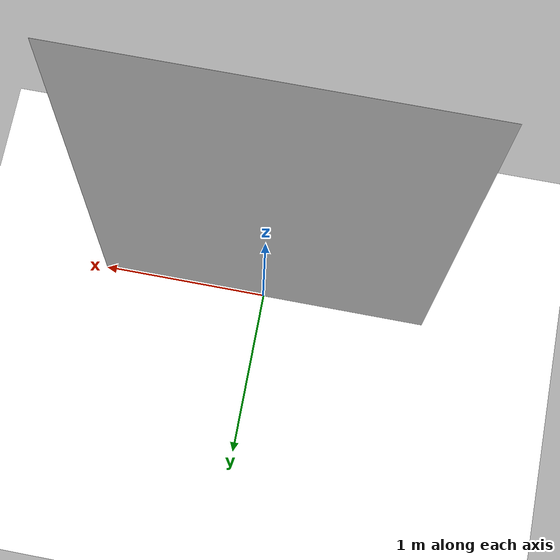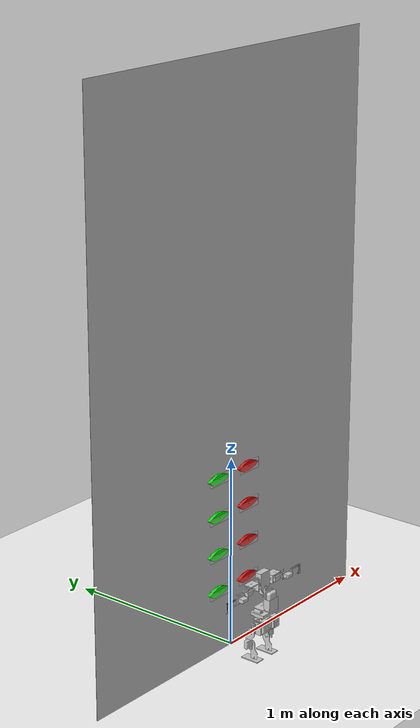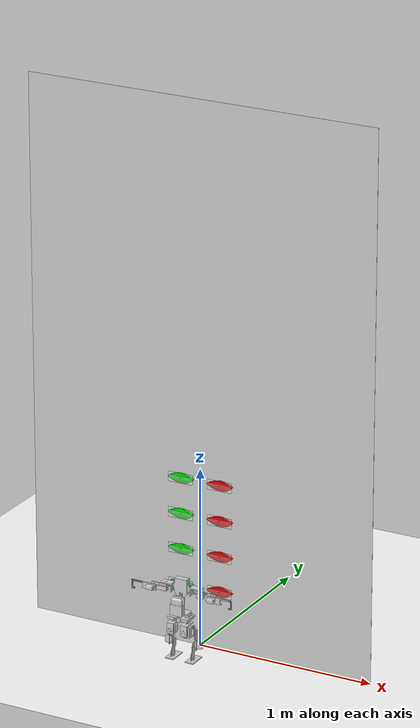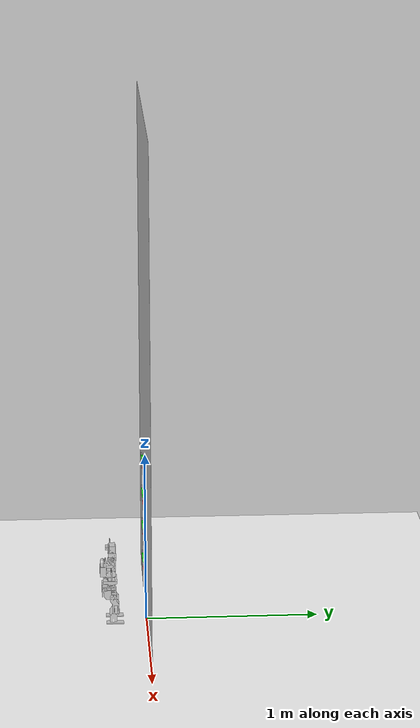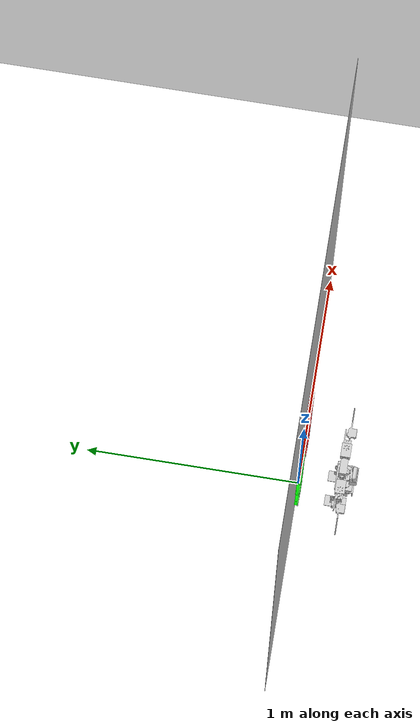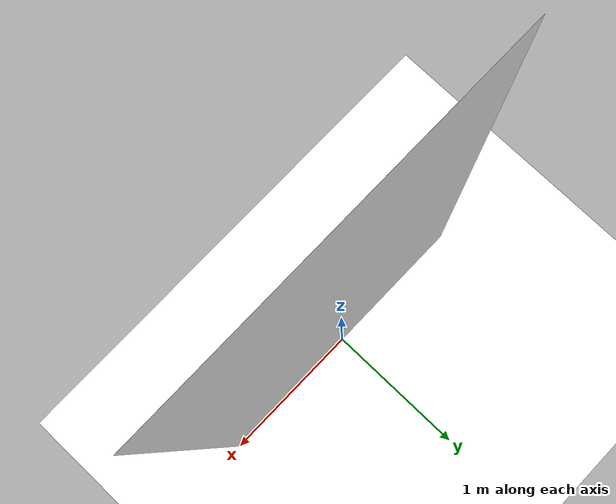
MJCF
<mujoco model="scene">
  <include file="robot.xml"/>
  <include file="groundplane.xml"/>
  <include file="wall.xml"/>

  <statistic center="0 0 0.2" extent="0.6"/>
  <option gravity="0 0 -9.81"/>

  <visual>
    <headlight diffuse="0.6 0.6 0.6" ambient="0.3 0.3 0.3" specular="0 0 0"/>
    <rgba haze="0.15 0.25 0.35 1"/>
    <global azimuth="160" elevation="-20"/>
  </visual>

  <worldbody>
    <light pos="-2 -1 3"/>
    <light pos="2 -1 3"/>
  </worldbody>
</mujoco>

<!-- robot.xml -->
<mujoco model="robot">
  <compiler angle="radian" autolimits="true"/>

  <asset>
    <mesh file="assets\robot\Waist.STL"/>
    <mesh file="assets\robot\R_Hip_1.STL"/>
    <mesh file="assets\robot\R_Hip_2.STL"/>
    <mesh file="assets\robot\R_Femur.STL"/>
    <mesh file="assets\robot\R_Tibia.STL"/>
    <mesh file="assets\robot\L_Hip_1.STL"/>
    <mesh file="assets\robot\L_Hip_2.STL"/>
    <mesh file="assets\robot\L_Femur.STL"/>
    <mesh file="assets\robot\L_Tibia.STL"/>
    <mesh file="assets\robot\Torso.STL"/>
    <mesh file="assets\robot\Chest.STL"/>
    <mesh file="assets\robot\R_Shoulder.STL"/>
    <mesh file="assets\robot\R_Upperarm.STL"/>
    <mesh file="assets\robot\R_Lowerarm.STL"/>
    <mesh file="assets\robot\L_Shoulder.STL"/>
    <mesh file="assets\robot\L_Upperarm.STL"/>
    <mesh file="assets\robot\L_Lowerarm.STL"/>
  </asset>

  <default>
    <geom type="mesh" solref="0.004 1" rgba="0.8 0.8 0.8 1"/>
    <joint type="hinge" pos="0 0 0" range="-1.571 1.571" damping="1.084" armature="0.045" frictionloss="0.03"/>
    <position kp="80" ctrlrange="-1.571 1.571" forcerange="-0.8 0.8"/>
  </default>

  <worldbody>
    <body name="Waist" pos="0 -0.21 0" quat="0.7071 0 0 0.7071">
      <inertial pos="0.000675 -4.791665e-09 0.246991" quat="1 0 0 0" mass="0.263389" diaginertia="0.000178 0.000111 0.000241"/>
      <freejoint/>
      <geom mesh="Waist"/>
      <body name="R_Hip_1" pos="-0.0025 -0.04 0.222">
        <inertial pos="-0.024192 0 -0.0177171" quat="1 0 0 0" mass="0.0324864" diaginertia="1.432987e-05 2.506009e-05 1.914315e-05"/>
        <joint name="R_Hip_Yaw" axis="0 0 -1"/>
        <geom mesh="R_Hip_1"/>
        <body name="R_Hip_2" pos="-0.038 0 -0.042">
          <inertial pos="0.0409498 -0.00645015 -0.01" quat="1 0 0 0" mass="0.123946" diaginertia="3.006544e-05 3.251584e-05 2.392025e-05"/>
          <joint name="R_Hip_Roll" axis="-1 0 0"/>
          <geom mesh="R_Hip_2"/>
          <body name="R_Femur" pos="0.0574 -0.0374 -0.02">
            <inertial pos="0.0133711 -0.00959042 -0.0602765" quat="0.997358 0.00487096 -0.0724138 0.00297695" mass="0.0686885" diaginertia="2.74941e-05 2.3889e-05 1.11512e-05"/>
            <joint name="R_Hip_Pitch" axis="0 -1 0"/>
            <geom mesh="R_Femur"/>
            <body name="R_Tibia" pos="0.015 0.0149 -0.0775">
              <inertial pos="-0.00568498 0.00344165 -0.0638605" quat="0.699452 0.103763 0.103763 0.699452" mass="0.0463986" diaginertia="6.10288e-05 3.95454e-05 3.44523e-05"/>
              <joint name="R_Knee_Pitch" axis="0 1 0"/>
              <geom mesh="R_Tibia"/>
            </body>
          </body>
        </body>
      </body>
      <body name="L_Hip_1" pos="-0.0025 0.04 0.222">
        <inertial pos="-0.024192 0 -0.0177171" quat="0.62917 0.322715 0.322715 0.62917" mass="0.0324864" diaginertia="2.50601e-05 2.42751e-05 9.1979e-06"/>
        <joint name="L_Hip_Yaw" axis="0 0 -1"/>
        <geom mesh="L_Hip_1"/>
        <body name="L_Hip_2" pos="-0.038 0 -0.042">
          <inertial pos="0.0409498 0.00645015 -0.01" quat="0.825611 -0.0145841 -0.00501062 0.564029" mass="0.123946" diaginertia="3.29585e-05 2.96285e-05 2.39146e-05"/>
          <joint name="L_Hip_Roll" axis="-1 0 0"/>
          <geom mesh="L_Hip_2"/>
          <body name="L_Femur" pos="0.0574 0.0374 -0.02">
            <inertial pos="0.0133711 0.00959042 -0.0602765" quat="0.997358 0.00487096 -0.0724138 0.00297695" mass="0.0686885" diaginertia="2.74941e-05 2.3889e-05 1.11512e-05"/>
            <joint name="L_Hip_Pitch" axis="0 -1 0"/>
            <geom mesh="L_Femur"/>
            <body name="L_Tibia" pos="0.015 -0.0149 -0.0775">
              <inertial pos="-0.00568498 0.00344165 -0.0638605" quat="0.699452 0.103763 0.103763 0.699452" mass="0.0463986" diaginertia="6.10288e-05 3.95454e-05 3.44523e-05"/>
              <joint name="L_Knee_Pitch" axis="0 1 0"/>
              <geom mesh="L_Tibia"/>
            </body>
          </body>
        </body>
      </body>
      <body name="Torso" pos="0.0025 0 0.2708">
        <inertial pos="-0.0380488 6.0347e-09 0.0430269" quat="1 0 0 0" mass="0.302799" diaginertia="3.251305e-04 2.69608e-04 1.879436e-04"/>
        <joint name="Torso_Yaw" axis="0 0 1"/>
        <geom mesh="Torso"/>
        <body name="Chest" pos="-0.023 0 0.0785">
          <inertial pos="0.029545 2.020228e-09 0.050443" quat="1 0 0 0" mass="0.226082" diaginertia="1.337382e-04 1.030822e-04 6.349694e-05"/>
          <joint name="Chest_Roll" axis="-1 0 0"/>
          <geom mesh="Chest"/>
          <body name="R_Shoulder" pos="0.0339 -0.0519 0.051">
            <inertial pos="0 -0.0230583 0.0112512" quat="1 0 0 0" mass="0.0305153" diaginertia="1.729398e-05 9.951904e-06 1.730445e-05"/>
            <joint name="R_Shoulder_Pitch" axis="0 -1 0"/>
            <geom mesh="R_Shoulder"/>
            <body name="R_Upperarm" pos="0 -0.047 0.0155">
              <inertial pos="2.53155e-03 -0.0196867 -0.0272403" quat="1 0 0 0" mass="0.0756393" diaginertia="3.634410e-05 1.430793e-05 2.984267e-05"/>
              <joint name="R_Shoulder_Yaw" axis="0 0 1"/>
              <geom mesh="R_Upperarm"/>
              <body name="R_Lowerarm" pos="0.0105 -0.071 -0.0369">
                <inertial pos="-0.0245568 -0.0165856 -8.079435e-05" quat="1 0 0 0" mass="0.0708506" diaginertia="2.945241e-05 1.13803e-05 3.287405e-05"/>
                <joint name="R_Elbow_Roll" axis="1 0 0"/>
                <geom mesh="R_Lowerarm"/>
                <body name="R_Finger" pos="-0.0194 -0.0884 0.0138">
                  <geom type="box" size="0.0025 0.030 0.00375" rgba="0.2 0.2 0.2 0.5" contype="2" conaffinity="2" condim="3"/>
                  <geom type="box" pos="0 -0.033775 -0.02155" size="0.0025 0.00375 0.0254" rgba="0.2 0.2 0.2 0.5" contype="2" conaffinity="2" condim="3"/>
                  <geom type="box" pos="0 -0.0254 -0.04265" size="0.0025 0.005 0.00375" rgba="0.2 0.2 0.2 0.5" contype="2" conaffinity="2" condim="3"/>
                </body>
              </body>
            </body>
          </body>
          <body name="L_Shoulder" pos="0.0339 0.0519 0.051">
            <inertial pos="0 0.0230583 0.0112512" quat="1 0 0 0" mass="0.0305153" diaginertia="1.729398e-05 9.951904e-06 1.730445e-05"/>
            <joint name="L_Shoulder_Pitch" axis="0 1 0"/>
            <geom mesh="L_Shoulder"/>
            <body name="L_Upperarm" pos="0 0.047 0.0155">
              <inertial pos="2.53155e-03 0.0196867 -0.0272403" quat="1 0 0 0" mass="0.0756393" diaginertia="3.634410e-05 1.430793e-05 2.984267e-05"/>
              <joint name="L_Shoulder_Yaw" axis="0 0 1"/>
              <geom mesh="L_Upperarm"/>
              <body name="L_Lowerarm" pos="0.0105 0.071 -0.0369">
                <inertial pos="-0.0245568 0.0165856 -8.079435e-05" quat="1 0 0 0" mass="0.0708506" diaginertia="2.945241e-05 1.13803e-05 3.287405e-05"/>
                <joint name="L_Elbow_Roll" axis="1 0 0"/>
                <geom mesh="L_Lowerarm"/>
                <body name="L_Finger" pos="-0.0194 0.0884 0.0138">
                  <geom type="box" size="0.0025 0.030 0.00375" rgba="0.2 0.2 0.2 0.5" contype="2" conaffinity="2" condim="3"/>
                  <geom type="box" pos="0 0.033775 -0.02155" size="0.0025 0.00375 0.0254" rgba="0.2 0.2 0.2 0.5" contype="2" conaffinity="2" condim="3"/>
                  <geom type="box" pos="0 0.0254 -0.04265" size="0.0025 0.005 0.00375" rgba="0.2 0.2 0.2 0.5" contype="2" conaffinity="2" condim="3"/>
                </body>
              </body>
            </body>
          </body>
        </body>
      </body>
    </body>
  </worldbody>
  <actuator>
    <position joint="R_Hip_Yaw"/>
    <position joint="R_Hip_Roll"/>
    <position joint="R_Hip_Pitch"/>
    <position joint="R_Knee_Pitch"/>
    <position joint="L_Hip_Yaw"/>
    <position joint="L_Hip_Roll"/>
    <position joint="L_Hip_Pitch"/>
    <position joint="L_Knee_Pitch"/>
    <position joint="Torso_Yaw"/>
    <position joint="Chest_Roll"/>
    <position joint="R_Shoulder_Pitch"/>
    <position joint="R_Shoulder_Yaw"/>
    <position joint="R_Elbow_Roll"/>
    <position joint="L_Shoulder_Pitch"/>
    <position joint="L_Shoulder_Yaw"/>
    <position joint="L_Elbow_Roll"/>
  </actuator>
</mujoco>

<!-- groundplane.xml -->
<mujoco model="ground plane">
  <asset>
    <!-- Define checker texture -->
    <texture name="checker_tex" type="2d" builtin="checker" width="512" height="512" rgb1="0.2 0.2 0.2" rgb2="0.8 0.8 0.8"/>
    <material name="checker_mat" texture="checker_tex" texrepeat="3 5"/>
  </asset>

  <worldbody>
    <geom name="floor" size="3 3 0.01" type="plane" material="checker_mat" rgba="1 1 1 1"/>
  </worldbody>
</mujoco>

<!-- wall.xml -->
<mujoco model="wall">
  <statistic center="0 0 0.2" extent="0.05"/>

  <asset>
    <texture name="wall" file="assets/wall/wall_color.png" type="2d"/>
    <material name="wall" texture="wall" texuniform="true"/>
    <mesh name="hold" file="assets\wall\Hold_Screw_V1_Rework.STL" scale="0.001 0.001 0.001"/>
  </asset>

  <worldbody>
    <geom name="wall" size="1 1.5 0.1" type="plane" material="wall" pos="0.0 0.0 1.5" quat="0.70710678 0.70710678 0.0 0.0" contype="2" conaffinity="2" condim="3"/>
    <body name="hold1" pos="0.045 0 0.3" quat="0.7071 0 0 -0.7071">
      <geom type="mesh" mesh="hold" rgba="1 0 0 1" contype="0" conaffinity="0"/>
      <body name="hold1c" pos="0.016 0.075 0.034">
        <geom type="box" size="0.0025 0.071 0.027" rgba="1 1 1 0.3" contype="2" conaffinity="2" condim="3"/>
      </body>
    </body>
    <body name="hold2" pos="-0.185 0 0.3" quat="0.7071 0 0 -0.7071">
      <geom type="mesh" mesh="hold" rgba="0 1 0 1" contype="0" conaffinity="0"/>
      <body name="hold2c" pos="0.016 0.075 0.034">
        <geom type="box" size="0.0025 0.071 0.027" rgba="1 1 1 0.3" contype="2" conaffinity="2" condim="3"/>
      </body>
    </body>
    <body name="hold3" pos="0.045 0 0.5" quat="0.7071 0 0 -0.7071">
      <geom type="mesh" mesh="hold" rgba="1 0 0 1" contype="0" conaffinity="0"/>
      <body name="hold3c" pos="0.016 0.075 0.034">
        <geom type="box" size="0.0025 0.071 0.027" rgba="1 1 1 0.3" contype="2" conaffinity="2" condim="3"/>
      </body>
    </body>
    <body name="hold4" pos="-0.185 0 0.5" quat="0.7071 0 0 -0.7071">
      <geom type="mesh" mesh="hold" rgba="0 1 0 1" contype="0" conaffinity="0"/>
      <body name="hold4c" pos="0.016 0.075 0.034">
        <geom type="box" size="0.0025 0.071 0.027" rgba="1 1 1 0.3" contype="2" conaffinity="2" condim="3"/>
      </body>
    </body>
    <body name="hold5" pos="0.045 0 0.7" quat="0.7071 0 0 -0.7071">
      <geom type="mesh" mesh="hold" rgba="1 0 0 1" contype="0" conaffinity="0"/>
      <body name="hold5c" pos="0.016 0.075 0.034">
        <geom type="box" size="0.0025 0.071 0.027" rgba="1 1 1 0.3" contype="2" conaffinity="2" condim="3"/>
      </body>
    </body>
    <body name="hold6" pos="-0.185 0 0.7" quat="0.7071 0 0 -0.7071">
      <geom type="mesh" mesh="hold" rgba="0 1 0 1" contype="0" conaffinity="0"/>
      <body name="hold6c" pos="0.016 0.075 0.034">
        <geom type="box" size="0.0025 0.071 0.027" rgba="1 1 1 0.3" contype="2" conaffinity="2" condim="3"/>
      </body>
    </body>
    <body name="hold7" pos="0.045 0 0.9" quat="0.7071 0 0 -0.7071">
      <geom type="mesh" mesh="hold" rgba="1 0 0 1" contype="0" conaffinity="0"/>
      <body name="hold7c" pos="0.016 0.075 0.034">
        <geom type="box" size="0.0025 0.071 0.027" rgba="1 1 1 0.3" contype="2" conaffinity="2" condim="3"/>
      </body>
    </body>
    <body name="hold8" pos="-0.185 0 0.9" quat="0.7071 0 0 -0.7071">
      <geom type="mesh" mesh="hold" rgba="0 1 0 1" contype="0" conaffinity="0"/>
      <body name="hold8c" pos="0.016 0.075 0.034">
        <geom type="box" size="0.0025 0.071 0.027" rgba="1 1 1 0.3" contype="2" conaffinity="2" condim="3"/>
      </body>
    </body>
  </worldbody>
</mujoco>
